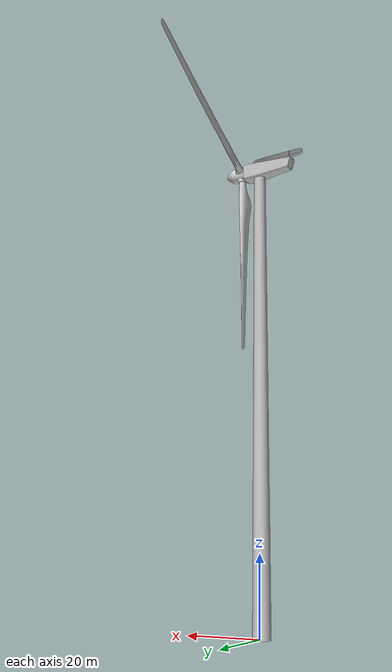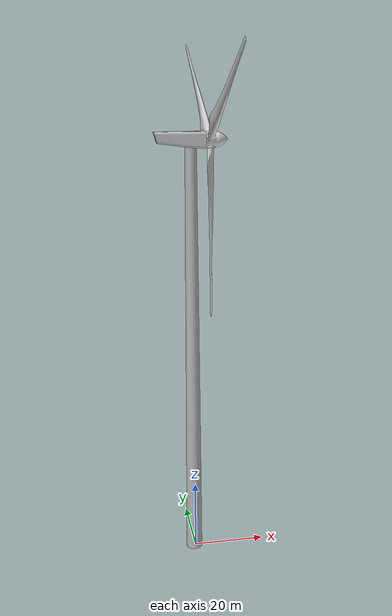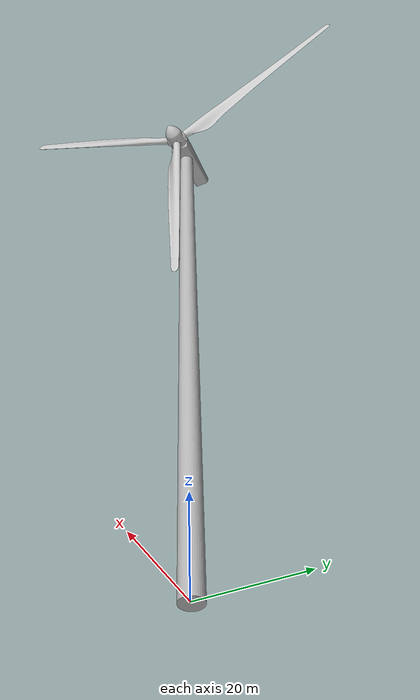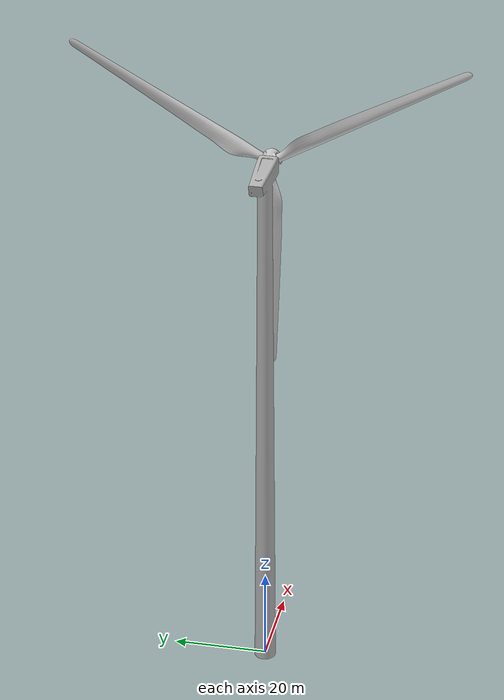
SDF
<?xml version="1.0" ?>
<sdf version="1.4">
  <model name="wind_turbine_70">
    <static>true</static>
        <link name="hub_link">
          <visual name="visual">
            <cast_shadows>false</cast_shadows>
            <pose>3.38 0 119 3.14159 0 0</pose>
            <geometry>
              <mesh>
                <uri>model://wind_turbine_70m/meshes/wind_turbine_hub.dae</uri>
              </mesh>
            </geometry>
          </visual>

      <visual name="visual_blade1">
        <cast_shadows>false</cast_shadows>
        <pose>4.71 0 119 3.14159 0 0</pose>
        <geometry>
          <mesh>
            <uri>model://wind_turbine_70m/meshes/wind_turbine_blade.dae</uri>
          </mesh>
        </geometry>
      </visual>
        <visual name="visual_blade2">
        <cast_shadows>false</cast_shadows>
        <pose>4.71 0 119 1.0472 0 0</pose>
        <geometry>
          <mesh>
            <uri>model://wind_turbine_70m/meshes/wind_turbine_blade.dae</uri>
          </mesh>
        </geometry>
      </visual>
        <visual name="visual_blade3">
        <cast_shadows>false</cast_shadows>
        <pose>4.71 0 119 -1.0472 0 0</pose>
        <geometry>
          <mesh>
            <uri>model://wind_turbine_70m/meshes/wind_turbine_blade.dae</uri>
          </mesh>
        </geometry>
      </visual>
      <visual name="visual_tower">
        <cast_shadows>false</cast_shadows>
        <pose>0 0 0 0 0 0</pose>
        <geometry>
          <mesh>
            <uri>model://wind_turbine_70m/meshes/wind_turbine_tower119.dae</uri>
          </mesh>
        </geometry>
      </visual>
        </link>
  </model>
</sdf>
